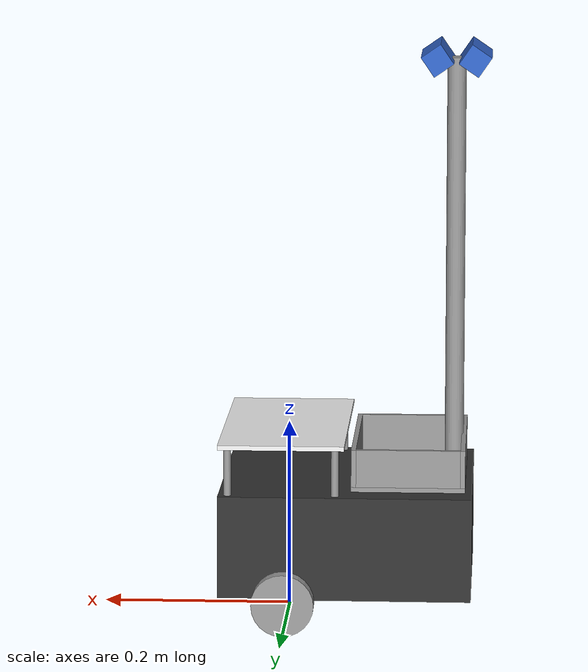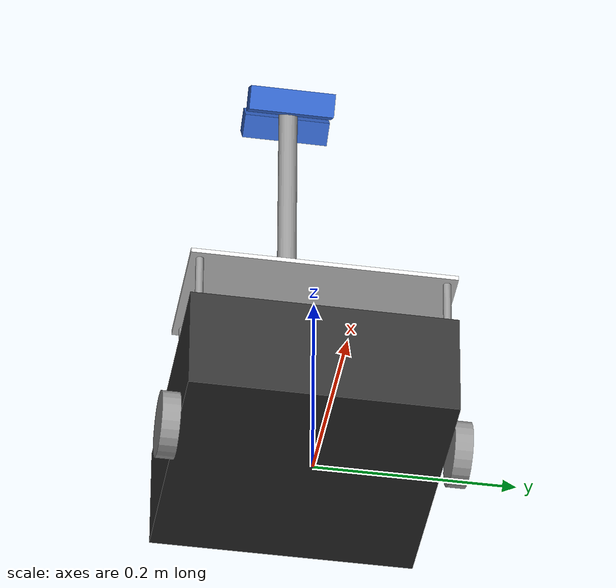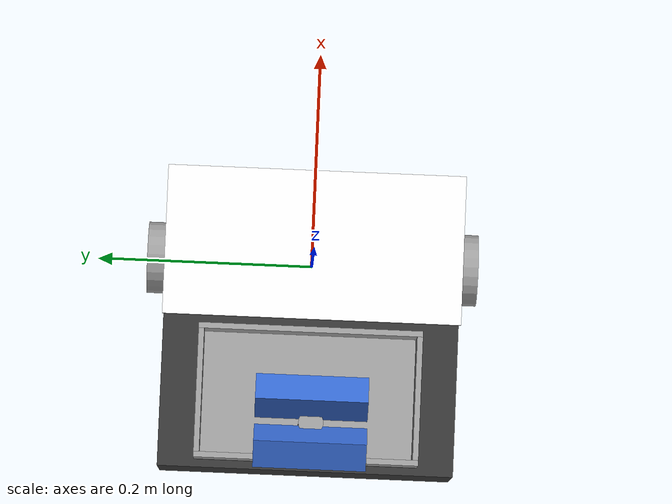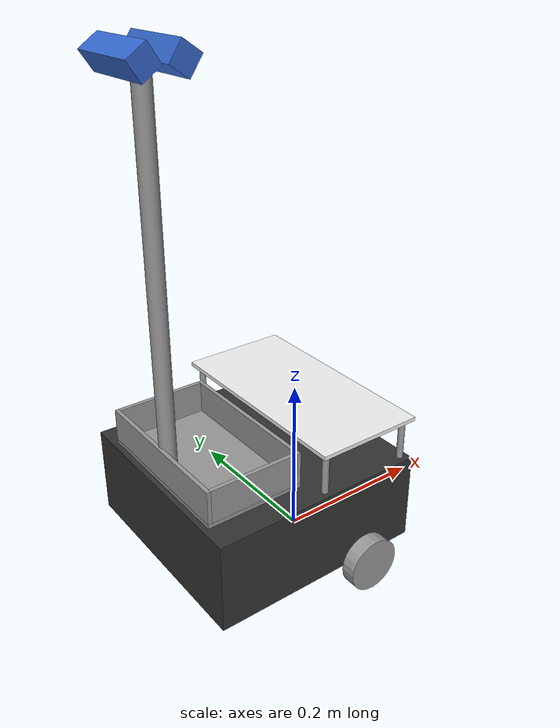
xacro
<?xml version="1.0"?>
<robot name="beebot" xmlns:xacro="http://www.ros.org/wiki/xacro">
  <xacro:arg name="mock_hardware" default="false"/>
  <xacro:arg name="mock_effort" default="0.0"/>
  <xacro:arg name="port" default="/dev/opencr"/>

  <xacro:property name="PI" value="3.14159265"/>
  <!-- 차체 -->
  <xacro:property name="wheel_radius" value="0.033"/>
  <xacro:property name="wheel_width" value="0.018"/>
  <xacro:property name="wheel_separation" value="0.287"/>
  <xacro:property name="body_l" value="0.266"/>
  <xacro:property name="body_w" value="0.266"/>
  <xacro:property name="body_h" value="0.110"/>
  <xacro:property name="body_x" value="-0.064"/>   <!-- 바퀴 축 기준 본체 중심 (바퀴가 앞쪽) -->
  <xacro:property name="body_z" value="0.080"/>
  <xacro:property name="body_top" value="${body_z + body_h / 2}"/>
  <!-- 상판: 본체 앞쪽 절반 -->
  <xacro:property name="deck_standoff" value="0.050"/>
  <xacro:property name="deck_t" value="0.005"/>
  <xacro:property name="deck_l" value="${body_l / 2}"/>
  <xacro:property name="deck_x" value="${body_x + body_l / 4}"/>
  <xacro:property name="deck_top" value="${body_top + deck_standoff + deck_t}"/>
  <!-- 선가이드 폴: 본체 뒤쪽 끝 -->
  <xacro:property name="pole_h" value="0.450"/>
  <xacro:property name="pole_r" value="0.010"/>
  <xacro:property name="pole_x" value="${body_x - body_l / 2 + 0.020}"/>

  <material name="dark"><color rgba="0.2 0.2 0.2 1"/></material>
  <material name="grey"><color rgba="0.6 0.6 0.6 1"/></material>
  <material name="white"><color rgba="0.95 0.95 0.95 1"/></material>
  <material name="orange"><color rgba="0.95 0.5 0.1 1"/></material>
  <material name="blue"><color rgba="0.2 0.4 0.8 1"/></material>

  <!-- 관성: 균질 직육면체·원기둥·구 -->
  <xacro:macro name="box_inertia" params="m x y z *origin">
    <inertial>
      <xacro:insert_block name="origin"/>
      <mass value="${m}"/>
      <inertia ixx="${m * (y*y + z*z) / 12}" ixy="0" ixz="0" iyy="${m * (x*x + z*z) / 12}" iyz="0" izz="${m * (x*x + y*y) / 12}"/>
    </inertial>
  </xacro:macro>
  <xacro:macro name="cylinder_inertia" params="m r h *origin">
    <inertial>
      <xacro:insert_block name="origin"/>
      <mass value="${m}"/>
      <inertia ixx="${m * (3*r*r + h*h) / 12}" ixy="0" ixz="0" iyy="${m * (3*r*r + h*h) / 12}" iyz="0" izz="${m * r * r / 2}"/>
    </inertial>
  </xacro:macro>

  <!-- ================= 베이스 =================
       링크·관절 이름과 TF 트리는 beebot_mesh/urdf.xacro와 같다 (모델을 바꿔 끼워도 노드·설정이 그대로 돎).
       beebot_mesh처럼 차체에 붙은 것(캐스터·상판·적재함·선가이드 폴)은 base_link 한 링크의 도형으로 합쳤다. -->
  <!-- 적재함 (뒤쪽 절반, 퍽 운반): 바닥 윗면 z=0.140 (base_link 기준) · 가이드벽 4면 (높이 0.04, 두께 0.005)
       시뮬레이터는 같은 치수로 퍽 받침·가둠 판정 (simulator/main.py TRAY) -->
  <xacro:property name="tray_x0" value="-0.19"/>
  <xacro:property name="tray_x1" value="-0.07"/>
  <xacro:property name="tray_y" value="0.10"/>
  <xacro:property name="tray_floor_z" value="0.140"/>
  <xacro:property name="tray_wall_h" value="0.04"/>
  <xacro:property name="tray_wall_t" value="0.005"/>
  <xacro:macro name="part" params="xyz *geometry material">
    <visual>
      <origin xyz="${xyz}"/>
      <xacro:insert_block name="geometry"/>
      <material name="${material}"/>
    </visual>
  </xacro:macro>
  <link name="base_footprint"/>
  <link name="base_link">
    <!-- 본체 -->
    <visual>
      <origin xyz="${body_x} 0 ${body_z}"/>
      <geometry><box size="${body_l} ${body_w} ${body_h}"/></geometry>
      <material name="dark"/>
    </visual>
    <collision>
      <origin xyz="${body_x} 0 ${body_z}"/>
      <geometry><box size="${body_l} ${body_w} ${body_h}"/></geometry>
    </collision>
    <!-- ponytail: 합친 부품(상판 0.2 · 적재함 0.05 · 폴 0.1kg) 질량은 본체 상자 하나에 더함 — 무게중심이 정확해야 하면 나눠 계산 -->
    <xacro:box_inertia m="1.85" x="${body_l}" y="${body_w}" z="${body_h}"><origin xyz="${body_x} 0 ${body_z}"/></xacro:box_inertia>
    <!-- 뒤쪽 캐스터 2개 (구, 충돌만) -->
    <collision>
      <origin xyz="${body_x - body_l / 2 + 0.020} 0.064 0.000"/>
      <geometry><sphere radius="0.010"/></geometry>
    </collision>
    <collision>
      <origin xyz="${body_x - body_l / 2 + 0.020} -0.064 0.000"/>
      <geometry><sphere radius="0.010"/></geometry>
    </collision>
    <!-- 상판 (앞쪽 절반, 스탠드오프 위) — 윗면 z = deck_top -->
    <xacro:part xyz="${deck_x} 0 ${deck_top - deck_t / 2}" material="white"><geometry><box size="${deck_l} ${body_w} ${deck_t}"/></geometry></xacro:part>
    <collision>
      <origin xyz="${deck_x} 0 ${deck_top - deck_t / 2}"/>
      <geometry><box size="${deck_l} ${body_w} ${deck_t}"/></geometry>
    </collision>
    <xacro:macro name="standoff" params="x y">
      <xacro:part xyz="${deck_x + x} ${y} ${deck_top - deck_t - deck_standoff / 2}" material="grey"><geometry><cylinder radius="0.004" length="${deck_standoff}"/></geometry></xacro:part>
    </xacro:macro>
    <xacro:standoff x="${deck_l / 2 - 0.01}" y="${body_w / 2 - 0.01}"/>
    <xacro:standoff x="${deck_l / 2 - 0.01}" y="${-body_w / 2 + 0.01}"/>
    <xacro:standoff x="${-deck_l / 2 + 0.01}" y="${body_w / 2 - 0.01}"/>
    <xacro:standoff x="${-deck_l / 2 + 0.01}" y="${-body_w / 2 + 0.01}"/>
    <!-- 적재함: 바닥판 + 가이드벽 4면 -->
    <xacro:part xyz="-0.13 0 0.1375" material="grey"><geometry><box size="0.12 0.20 0.005"/></geometry></xacro:part>
    <xacro:part xyz="-0.1875 0 0.16" material="grey"><geometry><box size="0.005 0.20 0.04"/></geometry></xacro:part>
    <xacro:part xyz="-0.0725 0 0.16" material="grey"><geometry><box size="0.005 0.20 0.04"/></geometry></xacro:part>
    <xacro:part xyz="-0.13 0.0975 0.16" material="grey"><geometry><box size="0.11 0.005 0.04"/></geometry></xacro:part>
    <xacro:part xyz="-0.13 -0.0975 0.16" material="grey"><geometry><box size="0.11 0.005 0.04"/></geometry></xacro:part>
    <collision>
      <origin xyz="-0.13 0 0.1375"/>
      <geometry><box size="0.12 0.20 0.005"/></geometry>
    </collision>
    <!-- 선가이드 폴 (뒤쪽 끝, 전원선이 위에서 내려옴) -->
    <xacro:part xyz="${pole_x} 0 ${body_top + pole_h / 2}" material="grey"><geometry><cylinder radius="${pole_r}" length="${pole_h}"/></geometry></xacro:part>
    <collision>
      <origin xyz="${pole_x} 0 ${body_top + pole_h / 2}"/>
      <geometry><cylinder radius="${pole_r}" length="${pole_h}"/></geometry>
    </collision>
  </link>
  <joint name="base_joint" type="fixed">
    <parent link="base_footprint"/>
    <child link="base_link"/>
    <origin xyz="0 0 0.010"/>
  </joint>

  <xacro:macro name="wheel" params="side y">
    <link name="wheel_${side}_link">
      <visual>
        <origin rpy="${-PI/2} 0 0"/>
        <geometry><cylinder radius="${wheel_radius}" length="${wheel_width}"/></geometry>
        <material name="grey"/>
      </visual>
      <collision>
        <origin rpy="${-PI/2} 0 0"/>
        <geometry><cylinder radius="${wheel_radius}" length="${wheel_width}"/></geometry>
      </collision>
      <xacro:cylinder_inertia m="0.03" r="${wheel_radius}" h="${wheel_width}"><origin rpy="${-PI/2} 0 0"/></xacro:cylinder_inertia>
    </link>
    <joint name="wheel_${side}_joint" type="continuous">
      <parent link="base_link"/>
      <child link="wheel_${side}_link"/>
      <origin xyz="0 ${y} ${wheel_radius - 0.010}"/>
      <axis xyz="0 1 0"/>
    </joint>
  </xacro:macro>
  <xacro:wheel side="left" y="${wheel_separation / 2}"/>
  <xacro:wheel side="right" y="${-wheel_separation / 2}"/>

  <link name="imu_link"/>
  <joint name="imu_joint" type="fixed">
    <parent link="base_link"/>
    <child link="imu_link"/>
    <origin xyz="${body_x} 0 0.068"/>
  </joint>

  <!-- 카메라: <이름>_link (x 앞) + <이름>_color_optical_frame (z 앞 · x 오른쪽 · y 아래) — RealSense 드라이버 publish_tf는 끈다 -->
  <xacro:macro name="camera" params="name parent *origin">
    <link name="${name}_link">
      <visual>
        <geometry><box size="0.025 0.090 0.025"/></geometry>
        <material name="blue"/>
      </visual>
      <collision><geometry><box size="0.025 0.090 0.025"/></geometry></collision>
      <xacro:box_inertia m="0.07" x="0.025" y="0.090" z="0.025"><origin xyz="0 0 0"/></xacro:box_inertia>
    </link>
    <joint name="${name}_joint" type="fixed">
      <parent link="${parent}"/>
      <child link="${name}_link"/>
      <xacro:insert_block name="origin"/>
    </joint>
    <link name="${name}_color_optical_frame"/>
    <joint name="${name}_optical_joint" type="fixed">
      <parent link="${name}_link"/>
      <child link="${name}_color_optical_frame"/>
      <origin rpy="${-PI/2} 0 ${-PI/2}"/>
    </joint>
  </xacro:macro>
  <xacro:camera name="pole_front_cam" parent="base_link">
    <origin xyz="${pole_x + 0.020} 0 ${body_top + pole_h}" rpy="0 0.6 0"/>   <!-- 폴 꼭대기 앞, 전방 하향 약 34° -->
  </xacro:camera>
  <!-- 폴 반대편: 뒤를 같은 각도로 내려다봄 (yaw 180°) — 지도를 앞뒤로 함께 채움 -->
  <xacro:camera name="pole_rear_cam" parent="base_link">
    <origin xyz="${pole_x - 0.020} 0 ${body_top + pole_h}" rpy="0 0.6 ${PI}"/>   <!-- 폴 꼭대기 뒤, 후방 하향 약 34° -->
  </xacro:camera>

  <!-- ================= ros2_control ================= -->
  <ros2_control name="BeebotSystem" type="system">
    <hardware>
      <plugin>control/BeebotSystemHardware</plugin>
      <param name="mock">$(arg mock_hardware)</param>
      <param name="mock_effort">$(arg mock_effort)</param>
      <param name="port">$(arg port)</param>
      <param name="baud_rate">1000000</param>
    </hardware>
    <xacro:macro name="wheel_if" params="name">
      <joint name="${name}">
        <command_interface name="velocity"/>
        <state_interface name="position"/>
        <state_interface name="velocity"/>
      </joint>
    </xacro:macro>
    <xacro:wheel_if name="wheel_left_joint"/>
    <xacro:wheel_if name="wheel_right_joint"/>
    <sensor name="imu">
      <state_interface name="orientation.x"/>
      <state_interface name="orientation.y"/>
      <state_interface name="orientation.z"/>
      <state_interface name="orientation.w"/>
      <state_interface name="angular_velocity.x"/>
      <state_interface name="angular_velocity.y"/>
      <state_interface name="angular_velocity.z"/>
      <state_interface name="linear_acceleration.x"/>
      <state_interface name="linear_acceleration.y"/>
      <state_interface name="linear_acceleration.z"/>
      <param name="frame_id">imu_link</param>
    </sensor>
  </ros2_control>
</robot>
